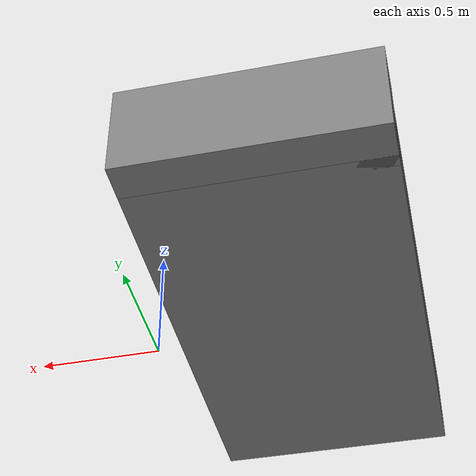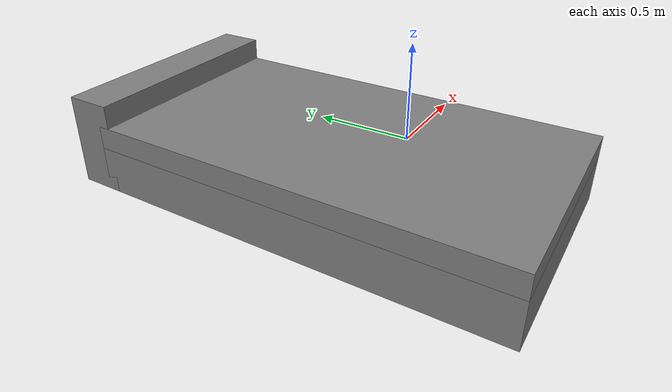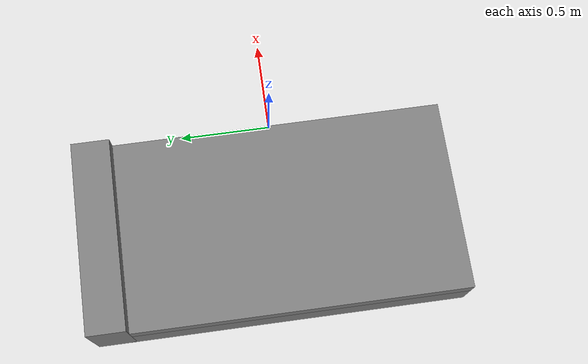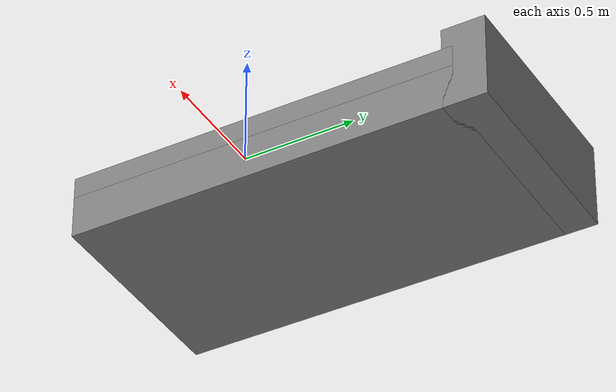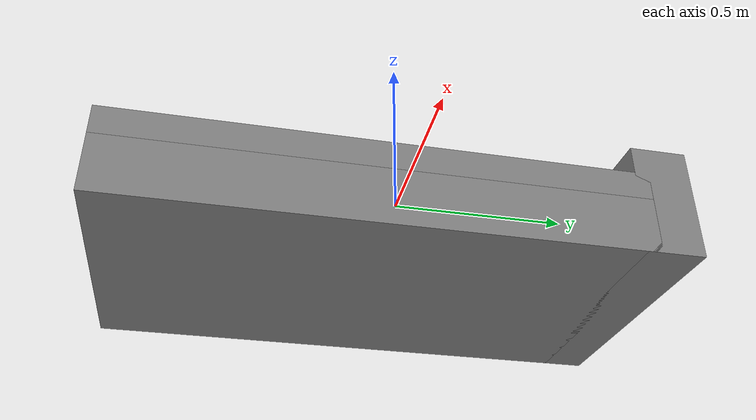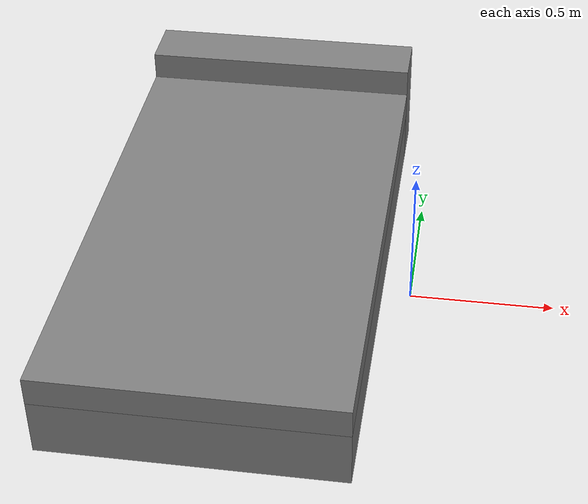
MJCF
<mujoco model="bed">
  <worldbody>
    <body name="bed" pos="-0.35 0 0" quat="1 0 0 0">
      <geom name="mattress" type="box" pos="-0.25 0 0.25" size="0.5 .9 .05" mass="1." material="metal"/>
      <geom name="frame" type="box" pos="-0.25 0 0.1" size="0.5 .9 .1" mass="1." material="metal"/>
      <body name="pillow" pos="0 0.95 0.2" quat="1 0 0 0">
        <geom name="pillow" type="box" pos="-0.25 0 0" size=".5 0.1 .2" mass="1." quat="1 0 0 0" material="metal"/>
      </body>
    </body>
  </worldbody>

  <asset>
    <material name="metal" rgba="0.5 0.5 0.5 1"/>
  </asset>

  <keyframe>
    <key name="home"
    qpos="
        -0.5458
        0.0477
        0.7766
        0.9771
        -0.0125
        -0.1393
        -0.1603
        0.1179
        -0.3636
        0.01740
        0.09886
        0.2240
        -1.0849
        -1.8019
        -0.0667
        0.07948
        0.13066
        -0.4637
        -1.1276
        -1.7488
        -0.1084
        -0.6416
        0.4902
        -0.2919
        -1.7595
        0.6055
        -1.1677
        -0.8268"/>
  </keyframe>
</mujoco>
